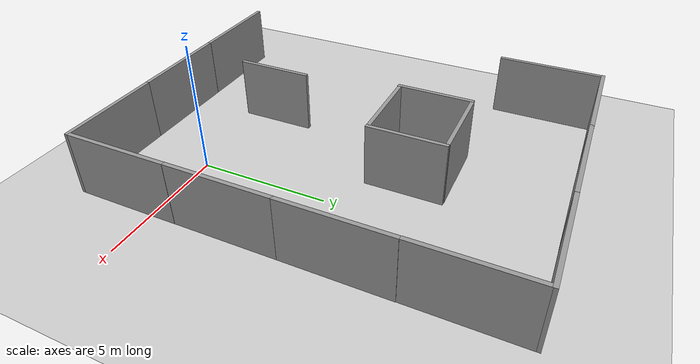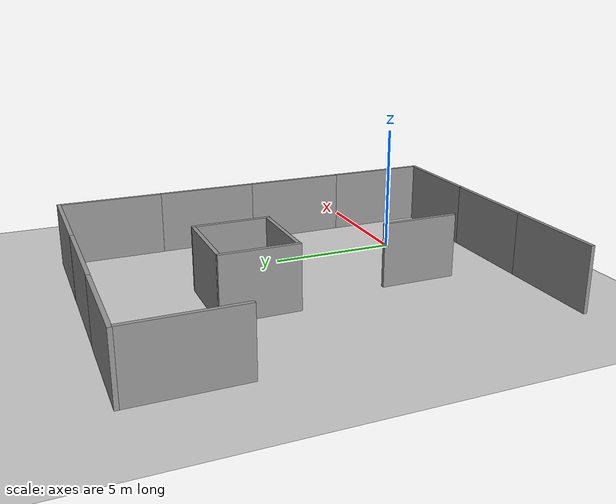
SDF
<sdf version="1.6">
 <world name="default">
  <light name="sun" type="directional">
   <pose>0 0 10 0 -0 0</pose>
   <diffuse>0.8 0.8 0.8 1</diffuse>
   <specular>0.2 0.2 0.2 1</specular>
   <attenuation>
    <range>1000</range>
    <constant>0.9</constant>
    <linear>0.01</linear>
    <quadratic>0.001</quadratic>
   </attenuation>
   <direction>-0.5 0.1 -0.9</direction>
  </light>
  <model name="ground_plane">
   <static>1</static>
   <link name="link">
    <collision name="collision">
     <geometry><plane><normal>0 0 1</normal><size>100 100</size></plane></geometry>
     <surface>
      <contact><collide_bitmask>65535</collide_bitmask></contact>
      <friction><ode><mu>100</mu><mu2>50</mu2></ode></friction>
     </surface>
    </collision>
    <visual name="visual">
     <cast_shadows>0</cast_shadows>
     <geometry><plane><normal>0 0 1</normal><size>100 100</size></plane></geometry>
     <material>
      <script><uri>file://media/materials/scripts/gazebo.material</uri><name>Gazebo/Grey</name></script>
     </material>
    </visual>
   </link>
  </model>
  <gravity>0 0 -9.8</gravity>
  <magnetic_field>6e-06 2.3e-05 -4.2e-05</magnetic_field>
  <atmosphere type="adiabatic"/>
  <physics name="default_physics" default="0" type="ode">
   <max_step_size>0.001</max_step_size>
   <real_time_factor>1</real_time_factor>
   <real_time_update_rate>1000</real_time_update_rate>
  </physics>
  <scene><ambient>0.4 0.4 0.4 1</ambient><background>0.7 0.7 0.7 1</background><shadows>1</shadows></scene>
  <audio><device>default</device></audio>
  <spherical_coordinates>
   <surface_model>EARTH_WGS84</surface_model>
   <latitude_deg>0</latitude_deg>
   <longitude_deg>0</longitude_deg>
   <elevation>0</elevation>
   <heading_deg>0</heading_deg>
  </spherical_coordinates>
  <model name="Y3">
   <pose>-3.17363 8.83557 -0 0 -0 0</pose>
   <link name="Wall_0">
    <collision name="Wall_0_Collision">
     <geometry><box><size>3 0.15 2.5</size></box></geometry>
     <pose>0 0 1.25 0 -0 0</pose>
    </collision>
    <visual name="Wall_0_Visual">
     <pose>0 0 1.25 0 -0 0</pose>
     <geometry><box><size>3 0.15 2.5</size></box></geometry>
     <material>
      <script><uri>file://media/materials/scripts/gazebo.material</uri><name>Gazebo/Grey</name></script>
      <ambient>1 1 1 1</ambient>
     </material>
     <meta><layer>0</layer></meta>
    </visual>
   </link>
   <static>1</static>
  </model>
  <model name="Y">
   <pose>3.07622 -0.998707 0 0 0 -1.56762</pose>
   <link name="Wall_0">
    <collision name="Wall_0_Collision">
     <geometry><box><size>4 0.15 2.5</size></box></geometry>
     <pose>0 0 1.25 0 -0 0</pose>
    </collision>
    <visual name="Wall_0_Visual">
     <pose>0 0 1.25 0 -0 0</pose>
     <geometry><box><size>4 0.15 2.5</size></box></geometry>
     <material>
      <script><uri>file://media/materials/scripts/gazebo.material</uri><name>Gazebo/Grey</name></script>
      <ambient>1 1 1 1</ambient>
     </material>
     <meta><layer>0</layer></meta>
    </visual>
   </link>
   <static>1</static>
  </model>
  <model name="Y_0">
   <pose>1.15171 -3.05228 0 0 -0 0</pose>
   <link name="Wall_0">
    <collision name="Wall_0_Collision">
     <geometry><box><size>4 0.15 2.5</size></box></geometry>
     <pose>0 0 1.25 0 -0 0</pose>
    </collision>
    <visual name="Wall_0_Visual">
     <pose>0 0 1.25 0 -0 0</pose>
     <geometry><box><size>4 0.15 2.5</size></box></geometry>
     <material>
      <script><uri>file://media/materials/scripts/gazebo.material</uri><name>Gazebo/Grey</name></script>
      <ambient>1 1 1 1</ambient>
     </material>
     <meta><layer>0</layer></meta>
    </visual>
   </link>
   <static>1</static>
  </model>
  <model name="Y_1">
   <pose>-2.80743 -3.0556 0 0 -0 0</pose>
   <link name="Wall_0">
    <collision name="Wall_0_Collision">
     <geometry><box><size>4 0.15 2.5</size></box></geometry>
     <pose>0 0 1.25 0 -0 0</pose>
    </collision>
    <visual name="Wall_0_Visual">
     <pose>0 0 1.25 0 -0 0</pose>
     <geometry><box><size>4 0.15 2.5</size></box></geometry>
     <material>
      <script><uri>file://media/materials/scripts/gazebo.material</uri><name>Gazebo/Grey</name></script>
      <ambient>1 1 1 1</ambient>
     </material>
     <meta><layer>0</layer></meta>
    </visual>
   </link>
   <static>1</static>
  </model>
  <model name="Y_2">
   <pose>-6.80764 -3.0545 0 0 -0 0</pose>
   <link name="Wall_0">
    <collision name="Wall_0_Collision">
     <geometry><box><size>4 0.15 2.5</size></box></geometry>
     <pose>0 0 1.25 0 -0 0</pose>
    </collision>
    <visual name="Wall_0_Visual">
     <pose>0 0 1.25 0 -0 0</pose>
     <geometry><box><size>4 0.15 2.5</size></box></geometry>
     <material>
      <script><uri>file://media/materials/scripts/gazebo.material</uri><name>Gazebo/Grey</name></script>
      <ambient>1 1 1 1</ambient>
     </material>
     <meta><layer>0</layer></meta>
    </visual>
   </link>
   <static>1</static>
  </model>
  <model name="Y_3">
   <pose>3.05848 3.00069 0 0 0 -1.56762</pose>
   <link name="Wall_0">
    <collision name="Wall_0_Collision">
     <geometry><box><size>4 0.15 2.5</size></box></geometry>
     <pose>0 0 1.25 0 -0 0</pose>
    </collision>
    <visual name="Wall_0_Visual">
     <pose>0 0 1.25 0 -0 0</pose>
     <geometry><box><size>4 0.15 2.5</size></box></geometry>
     <material>
      <script><uri>file://media/materials/scripts/gazebo.material</uri><name>Gazebo/Grey</name></script>
      <ambient>1 1 1 1</ambient>
     </material>
     <meta><layer>0</layer></meta>
    </visual>
   </link>
   <static>1</static>
  </model>
  <model name="Y_4">
   <pose>3.04636 6.9652 -0 0 0 -1.56762</pose>
   <link name="Wall_0">
    <collision name="Wall_0_Collision">
     <geometry><box><size>4 0.15 2.5</size></box></geometry>
     <pose>0 0 1.25 0 -0 0</pose>
    </collision>
    <visual name="Wall_0_Visual">
     <pose>0 0 1.25 0 -0 0</pose>
     <geometry><box><size>4 0.15 2.5</size></box></geometry>
     <material>
      <script><uri>file://media/materials/scripts/gazebo.material</uri><name>Gazebo/Grey</name></script>
      <ambient>1 1 1 1</ambient>
     </material>
     <meta><layer>0</layer></meta>
    </visual>
   </link>
   <static>1</static>
  </model>
  <model name="Y_5">
   <pose>1.09042 13.0147 0 0 -0 0</pose>
   <link name="Wall_0">
    <collision name="Wall_0_Collision">
     <geometry><box><size>4 0.15 2.5</size></box></geometry>
     <pose>0 0 1.25 0 -0 0</pose>
    </collision>
    <visual name="Wall_0_Visual">
     <pose>0 0 1.25 0 -0 0</pose>
     <geometry><box><size>4 0.15 2.5</size></box></geometry>
     <material>
      <script><uri>file://media/materials/scripts/gazebo.material</uri><name>Gazebo/Grey</name></script>
      <ambient>1 1 1 1</ambient>
     </material>
     <meta><layer>0</layer></meta>
    </visual>
   </link>
   <static>1</static>
  </model>
  <model name="Y_6">
   <pose>-2.88145 13.011 0 0 -0 0</pose>
   <link name="Wall_0">
    <collision name="Wall_0_Collision">
     <geometry><box><size>4 0.15 2.5</size></box></geometry>
     <pose>0 0 1.25 0 -0 0</pose>
    </collision>
    <visual name="Wall_0_Visual">
     <pose>0 0 1.25 0 -0 0</pose>
     <geometry><box><size>4 0.15 2.5</size></box></geometry>
     <material>
      <script><uri>file://media/materials/scripts/gazebo.material</uri><name>Gazebo/Grey</name></script>
      <ambient>1 1 1 1</ambient>
     </material>
     <meta><layer>0</layer></meta>
    </visual>
   </link>
   <static>1</static>
  </model>
  <model name="Y_7">
   <pose>-8.75126 10.9569 0 0 0 -1.56762</pose>
   <link name="Wall_0">
    <collision name="Wall_0_Collision">
     <geometry><box><size>4 0.15 2.5</size></box></geometry>
     <pose>0 0 1.25 0 -0 0</pose>
    </collision>
    <visual name="Wall_0_Visual">
     <pose>0 0 1.25 0 -0 0</pose>
     <geometry><box><size>4 0.15 2.5</size></box></geometry>
     <material>
      <script><uri>file://media/materials/scripts/gazebo.material</uri><name>Gazebo/Grey</name></script>
      <ambient>1 1 1 1</ambient>
     </material>
     <meta><layer>0</layer></meta>
    </visual>
   </link>
   <static>1</static>
  </model>
  <model name="Y3_0">
   <pose>-3.15077 5.98253 0 0 -0 0</pose>
   <link name="Wall_0">
    <collision name="Wall_0_Collision">
     <geometry><box><size>3 0.15 2.5</size></box></geometry>
     <pose>0 0 1.25 0 -0 0</pose>
    </collision>
    <visual name="Wall_0_Visual">
     <pose>0 0 1.25 0 -0 0</pose>
     <geometry><box><size>3 0.15 2.5</size></box></geometry>
     <material>
      <script><uri>file://media/materials/scripts/gazebo.material</uri><name>Gazebo/Grey</name></script>
      <ambient>1 1 1 1</ambient>
     </material>
     <meta><layer>0</layer></meta>
    </visual>
   </link>
   <static>1</static>
  </model>
  <model name="Y3_1">
   <pose>-1.60476 7.39598 0 0 0 -1.56762</pose>
   <link name="Wall_0">
    <collision name="Wall_0_Collision">
     <geometry><box><size>3 0.15 2.5</size></box></geometry>
     <pose>0 0 1.25 0 -0 0</pose>
    </collision>
    <visual name="Wall_0_Visual">
     <pose>0 0 1.25 0 -0 0</pose>
     <geometry><box><size>3 0.15 2.5</size></box></geometry>
     <material>
      <script><uri>file://media/materials/scripts/gazebo.material</uri><name>Gazebo/Grey</name></script>
      <ambient>1 1 1 1</ambient>
     </material>
     <meta><layer>0</layer></meta>
    </visual>
   </link>
   <static>1</static>
  </model>
  <model name="Y3_2">
   <pose>-4.72457 7.3868 -0 0 0 -1.56762</pose>
   <link name="Wall_0">
    <collision name="Wall_0_Collision">
     <geometry><box><size>3 0.15 2.5</size></box></geometry>
     <pose>0 0 1.25 0 -0 0</pose>
    </collision>
    <visual name="Wall_0_Visual">
     <pose>0 0 1.25 0 -0 0</pose>
     <geometry><box><size>3 0.15 2.5</size></box></geometry>
     <material>
      <script><uri>file://media/materials/scripts/gazebo.material</uri><name>Gazebo/Grey</name></script>
      <ambient>1 1 1 1</ambient>
     </material>
     <meta><layer>0</layer></meta>
    </visual>
   </link>
   <static>1</static>
  </model>
  <model name="Y_8">
   <pose>-6.83645 13.0184 0 0 -0 0</pose>
   <link name="Wall_0">
    <collision name="Wall_0_Collision">
     <geometry><box><size>4 0.15 2.5</size></box></geometry>
     <pose>0 0 1.25 0 -0 0</pose>
    </collision>
    <visual name="Wall_0_Visual">
     <pose>0 0 1.25 0 -0 0</pose>
     <geometry><box><size>4 0.15 2.5</size></box></geometry>
     <material>
      <script><uri>file://media/materials/scripts/gazebo.material</uri><name>Gazebo/Grey</name></script>
      <ambient>1 1 1 1</ambient>
     </material>
     <meta><layer>0</layer></meta>
    </visual>
   </link>
   <static>1</static>
  </model>
  <model name="Y3_3">
   <pose>-3.9625 0.797116 0 0 0 -1.56762</pose>
   <link name="Wall_0">
    <collision name="Wall_0_Collision">
     <geometry><box><size>3 0.15 2.5</size></box></geometry>
     <pose>0 0 1.25 0 -0 0</pose>
    </collision>
    <visual name="Wall_0_Visual">
     <pose>0 0 1.25 0 -0 0</pose>
     <geometry><box><size>3 0.15 2.5</size></box></geometry>
     <material>
      <script><uri>file://media/materials/scripts/gazebo.material</uri><name>Gazebo/Grey</name></script>
      <ambient>1 1 1 1</ambient>
     </material>
     <meta><layer>0</layer></meta>
    </visual>
   </link>
   <static>1</static>
  </model>
  <model name="Y_9">
   <pose>3.0244 10.9628 -0 0 0 -1.56762</pose>
   <link name="Wall_0">
    <collision name="Wall_0_Collision">
     <geometry><box><size>4 0.15 2.5</size></box></geometry>
     <pose>0 0 1.25 0 -0 0</pose>
    </collision>
    <visual name="Wall_0_Visual">
     <pose>0 0 1.25 0 -0 0</pose>
     <geometry><box><size>4 0.15 2.5</size></box></geometry>
     <material>
      <script><uri>file://media/materials/scripts/gazebo.material</uri><name>Gazebo/Grey</name></script>
      <ambient>1 1 1 1</ambient>
     </material>
     <meta><layer>0</layer></meta>
    </visual>
   </link>
   <static>1</static>
  </model>
 </world>
</sdf>
